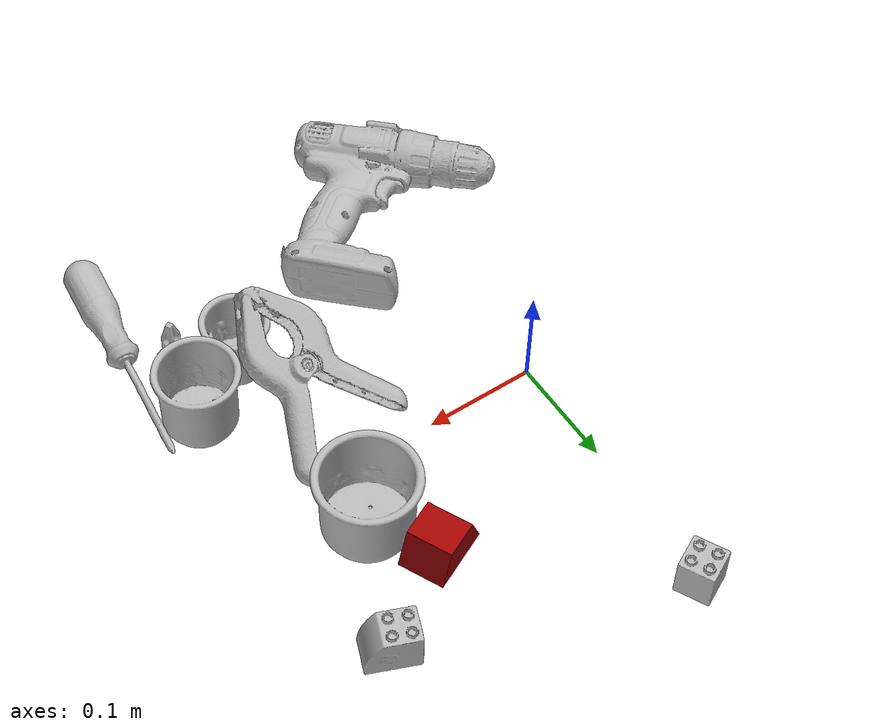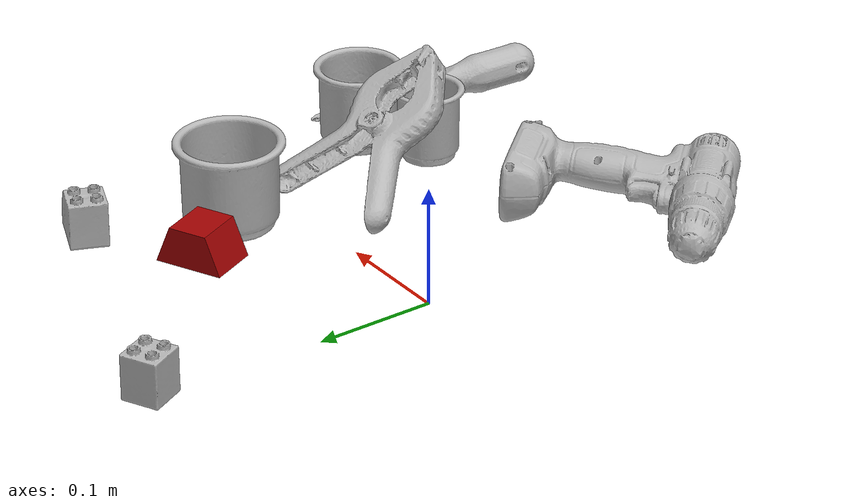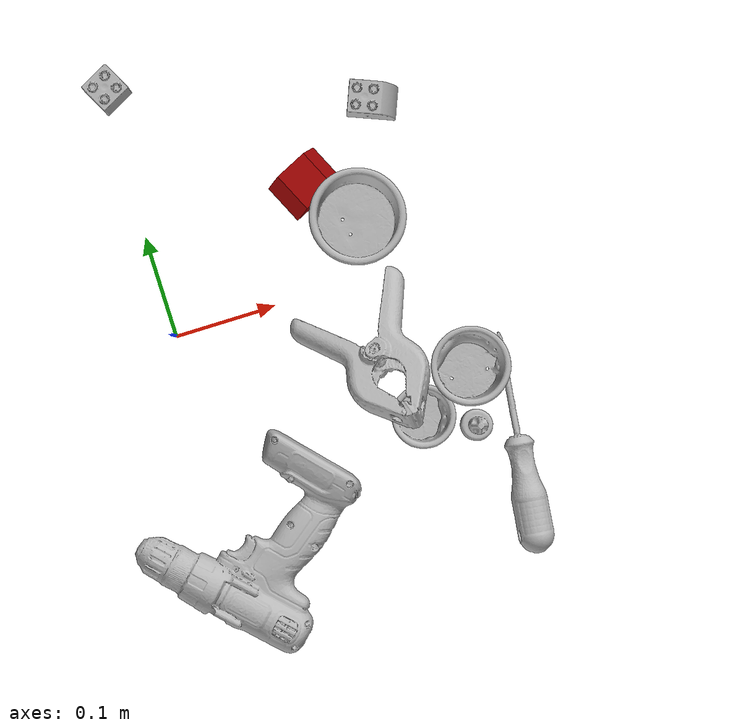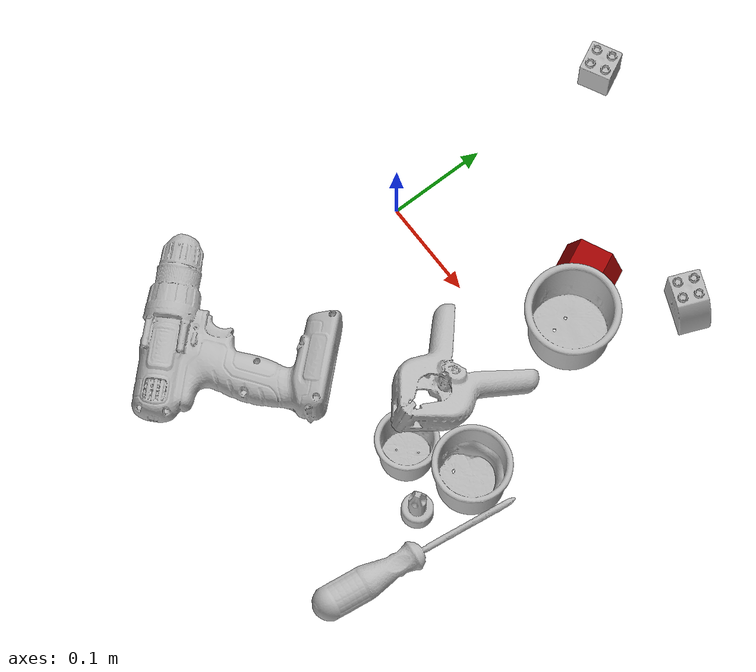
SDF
<sdf version="1.4">
  <world name="default">
    <light name="light1" type="point">
      <pose>0 0 1 0 0 0</pose>
      <diffuse>3 3 3 1</diffuse>
      <specular>3 3 3 1</specular>
    </light>
    <light name="light2" type="point">
      <pose>0 0.5 2 0 0 0</pose>
      <diffuse>1 1 1 1</diffuse>
      <specular>1 1 1 1</specular>
    </light>
    <light name="light3" type="point">
      <pose>0 0.5 2 0 0 0</pose>
      <diffuse>3 3 3 1</diffuse>
      <specular>3 3 3 1</specular>
    </light>
    <scene>
      <ambient>0.7 0.7 0.7</ambient>
    </scene>
    <model name="cup1">
      <link name="link_cup1">
        <collision name="default">
          <geometry>
            <mesh>
              <uri>model://b_cups/collision_meshes/collision.obj</uri>
              <scale>1.0 1.0 1.0</scale>
            </mesh>
          </geometry>
          <surface>
            <friction>
              <ode>
                <mu>0.5</mu>
                <mu2>0.5</mu2>
              </ode>
            </friction>
          <contact>
        <ode>
            <max_vel>0</max_vel>
            <min_depth>0.0001</min_depth>
            <kp>1e8</kp>
        </ode>
    </contact></surface>
        </collision>
        <visual name="default">
          <geometry>
            <mesh>
              <uri>model://b_cups/visual_meshes/visual.dae</uri>
              <scale>1.0 1.0 1.0</scale>
            </mesh>
          </geometry>
        </visual>
        <inertial>
          <mass>0.048613063991069794</mass>
          <pose>0.0005182003951631486 0.0018058597343042493 -0.0013381808530539274 0.11356326710502956 0.03872484102688303 -0.34569225342860055</pose>
          <inertia>
            <ixx>3.1820662e-05</ixx>
            <iyy>3.121653e-05</iyy>
            <izz>2.6776484e-05</izz>
            <ixy>0</ixy>
            <ixz>0</ixz>
            <iyz>0</iyz>
          </inertia>
        </inertial>
      </link>
      <pose>0.20308539271354675 -0.14379917085170746 0.03199750557541847 -0.007683753643053652 -0.0039175606916158475 -1.5309615795754663</pose>
    </model>
    <model name="cup2">
      <link name="link_cup2">
        <collision name="default">
          <geometry>
            <mesh>
              <uri>model://e_cups/collision_meshes/collision.obj</uri>
              <scale>1.0 1.0 1.0</scale>
            </mesh>
          </geometry>
          <surface>
            <friction>
              <ode>
                <mu>0.5</mu>
                <mu2>0.5</mu2>
              </ode>
            </friction>
          <contact>
        <ode>
            <max_vel>0</max_vel>
            <min_depth>0.0001</min_depth>
            <kp>1e8</kp>
        </ode>
    </contact></surface>
        </collision>
        <visual name="default">
          <geometry>
            <mesh>
              <uri>model://e_cups/visual_meshes/visual.dae</uri>
              <scale>1.0 1.0 1.0</scale>
            </mesh>
          </geometry>
        </visual>
        <inertial>
          <mass>0.07592208683490753</mass>
          <pose>0.0011355738388374448 0.002879784908145666 -0.003882972290739417 0.695241209711482 0.0876783799590152 -0.5235234031188288</pose>
          <inertia>
            <ixx>6.6944274e-05</ixx>
            <iyy>6.996636e-05</iyy>
            <izz>6.400647e-05</izz>
            <ixy>0</ixy>
            <ixz>0</ixz>
            <iyz>0</iyz>
          </inertia>
        </inertial>
      </link>
      <pose>0.25946396589279175 -0.11152496188879013 0.03559984639286995 9.03562214263899e-05 -0.00011429205233556277 0.3211052647029235</pose>
    </model>
    <model name="cup3">
      <link name="link_cup3">
        <collision name="default">
          <geometry>
            <mesh>
              <uri>model://h_cups/collision_meshes/collision.obj</uri>
              <scale>1.0 1.0 1.0</scale>
            </mesh>
          </geometry>
          <surface>
            <friction>
              <ode>
                <mu>0.5</mu>
                <mu2>0.5</mu2>
              </ode>
            </friction>
          <contact>
        <ode>
            <max_vel>0</max_vel>
            <min_depth>0.0001</min_depth>
            <kp>1e8</kp>
        </ode>
    </contact></surface>
        </collision>
        <visual name="default">
          <geometry>
            <mesh>
              <uri>model://h_cups/visual_meshes/visual.dae</uri>
              <scale>1.0 1.0 1.0</scale>
            </mesh>
          </geometry>
        </visual>
        <inertial>
          <mass>0.07054857164621353</mass>
          <pose>-2.7030857381760143e-05 0.0002301865170011297 -0.0018405391601845622 -0.024362378998248252 0.0654525662963329 0.12884761756284485</pose>
          <inertia>
            <ixx>9.1110225e-05</ixx>
            <iyy>9.002296e-05</iyy>
            <izz>9.5549614e-05</izz>
            <ixy>0</ixy>
            <ixz>0</ixz>
            <iyz>0</iyz>
          </inertia>
        </inertial>
      </link>
      <pose>0.19964298605918884 0.05381534993648529 0.037758003920316696 -6.19189144141022e-08 -3.4092054172108594e-08 0.10362032616931438</pose>
    </model>
    <model name="toy1">
      <link name="link_toy1">
        <collision name="default">
          <geometry>
            <mesh>
              <uri>model://f_lego_duplo/collision_meshes/collision.obj</uri>
              <scale>1.0 1.0 1.0</scale>
            </mesh>
          </geometry>
          <surface>
            <friction>
              <ode>
                <mu>0.5</mu>
                <mu2>0.5</mu2>
              </ode>
            </friction>
          <contact>
        <ode>
            <max_vel>0</max_vel>
            <min_depth>0.0001</min_depth>
            <kp>1e8</kp>
        </ode>
    </contact></surface>
        </collision>
        <visual name="default">
          <geometry>
            <mesh>
              <uri>model://f_lego_duplo/visual_meshes/visual.dae</uri>
              <scale>1.0 1.0 1.0</scale>
            </mesh>
          </geometry>
        </visual>
        <inertial>
          <mass>0.027637142688035965</mass>
          <pose>2.3694037736277096e-05 0.0001339315203949809 0.0018837873358279467 0.029838580482088747 -0.014425059949813135 -0.6756637855802661</pose>
          <inertia>
            <ixx>5.8398805e-06</ixx>
            <iyy>5.8919077e-06</iyy>
            <izz>5.069264e-06</izz>
            <ixy>0</ixy>
            <ixz>0</ixz>
            <iyz>0</iyz>
          </inertia>
        </inertial>
      </link>
      <pose>0.008006651885807514 0.24518786370754242 0.02187098190188408 5.472982024819329e-06 6.547981981978742e-06 0.47151484533340715</pose>
    </model>
    <model name="toy2">
      <link name="link_toy2">
        <collision name="default">
          <geometry>
            <mesh>
              <uri>model://d_toy_airplane/collision_meshes/collision.obj</uri>
              <scale>1.0 1.0 1.0</scale>
            </mesh>
          </geometry>
          <surface>
            <friction>
              <ode>
                <mu>0.5</mu>
                <mu2>0.5</mu2>
              </ode>
            </friction>
          <contact>
        <ode>
            <max_vel>0</max_vel>
            <min_depth>0.0001</min_depth>
            <kp>1e8</kp>
        </ode>
    </contact></surface>
        </collision>
        <visual name="default">
          <geometry>
            <mesh>
              <uri>model://d_toy_airplane/visual_meshes/visual.dae</uri>
              <scale>1.0 1.0 1.0</scale>
            </mesh>
          </geometry>
        </visual>
        <inertial>
          <mass>0.017859498038887978</mass>
          <pose>9.410335042048246e-05 -5.809318827232346e-05 -0.011728094890713692 0.0002667298520076861 0.004679004392369758 0.5194091511239993</pose>
          <inertia>
            <ixx>5.35393e-06</ixx>
            <iyy>5.3579683e-06</iyy>
            <izz>1.6163864e-06</izz>
            <ixy>0</ixy>
            <ixz>0</ixz>
            <iyz>0</iyz>
          </inertia>
        </inertial>
      </link>
      <pose>0.2515612244606018 -0.16843347251415253 0.03333863988518715 -0.00015650635383605867 -0.00026740962945555894 0.5413629578868435</pose>
    </model>
    <model name="toy3">
      <link name="link_toy3">
        <collision name="default">
          <geometry>
            <mesh>
              <uri>model://prism/collision_meshes/collision.obj</uri>
              <scale>0.5 0.5 0.5</scale>
            </mesh>
          </geometry>
          <surface>
            <friction>
              <ode>
                <mu>0.5</mu>
                <mu2>0.5</mu2>
              </ode>
            </friction>
          <contact>
        <ode>
            <max_vel>0</max_vel>
            <min_depth>0.0001</min_depth>
            <kp>1e8</kp>
        </ode>
    </contact></surface>
        </collision>
        <visual name="default">
          <geometry>
            <mesh>
              <uri>model://prism/visual_meshes/visual.dae</uri>
              <scale>0.5 0.5 0.5</scale>
            </mesh>
          </geometry>
        </visual>
        <inertial>
          <mass>0.04761093109846115</mass>
          <pose>-4.92679828312248e-05 -2.480786349678965e-07 -0.001693455153144896 0.0 0.006559181231804993 0.0</pose>
          <inertia>
            <ixx>1.074207e-05</ixx>
            <iyy>1.2981929e-05</iyy>
            <izz>1.590131e-05</izz>
            <ixy>0</ixy>
            <ixz>0</ixz>
            <iyz>0</iyz>
          </inertia>
        </inertial>
      </link>
      <pose>0.16355150938034058 0.10373120754957199 0.016084998846054077 1.0609349166778971e-07 -7.287694658508617e-08 -2.701516084348492</pose>
    </model>
    <model name="toy4">
      <link name="link_toy4">
        <collision name="default">
          <geometry>
            <mesh>
              <uri>model://d_lego_duplo/collision_meshes/collision.obj</uri>
              <scale>1.0 1.0 1.0</scale>
            </mesh>
          </geometry>
          <surface>
            <friction>
              <ode>
                <mu>0.5</mu>
                <mu2>0.5</mu2>
              </ode>
            </friction>
          <contact>
        <ode>
            <max_vel>0</max_vel>
            <min_depth>0.0001</min_depth>
            <kp>1e8</kp>
        </ode>
    </contact></surface>
        </collision>
        <visual name="default">
          <geometry>
            <mesh>
              <uri>model://d_lego_duplo/visual_meshes/visual.dae</uri>
              <scale>1.0 1.0 1.0</scale>
            </mesh>
          </geometry>
        </visual>
        <inertial>
          <mass>0.06000049039721489</mass>
          <pose>0.0028305640444159508 0.0001636611996218562 0.000858980929479003 0.08010949527318252 -0.38355210287845315 0.0010297055105996263</pose>
          <inertia>
            <ixx>1.1615211e-05</ixx>
            <iyy>1.6485134e-05</iyy>
            <izz>1.5897598e-05</izz>
            <ixy>0</ixy>
            <ixz>0</ixz>
            <iyz>0</iyz>
          </inertia>
        </inertial>
      </link>
      <pose>0.2489728182554245 0.16010573506355286 0.021740011870861053 -9.223347238381068e-07 3.3708830976574353e-07 2.7582035434238112</pose>
    </model>
    <model name="hardware1">
      <link name="link_hardware1">
        <collision name="default">
          <geometry>
            <mesh>
              <uri>model://phillips_screwdriver/collision_meshes/collision.obj</uri>
              <scale>1.0 1.0 1.0</scale>
            </mesh>
          </geometry>
          <surface>
            <friction>
              <ode>
                <mu>0.5</mu>
                <mu2>0.5</mu2>
              </ode>
            </friction>
          <contact>
        <ode>
            <max_vel>0</max_vel>
            <min_depth>0.0001</min_depth>
            <kp>1e8</kp>
        </ode>
    </contact></surface>
        </collision>
        <visual name="default">
          <geometry>
            <mesh>
              <uri>model://phillips_screwdriver/visual_meshes/visual.dae</uri>
              <scale>1.0 1.0 1.0</scale>
            </mesh>
          </geometry>
        </visual>
        <inertial>
          <mass>0.11704345047473907</mass>
          <pose>-0.04777182638645172 0.0010362302418798208 -0.0004555549821816385 -0.1571668982332543 0.0058509943133797405 -0.002156735283865719</pose>
          <inertia>
            <ixx>1.3751404e-05</ixx>
            <iyy>0.00017241857</iyy>
            <izz>0.0001725651</izz>
            <ixy>0</ixy>
            <ixz>0</ixz>
            <iyz>0</iyz>
          </inertia>
        </inertial>
      </link>
      <pose>0.28576987981796265 -0.1990475058555603 0.015409649349749088 0.06561083713957082 0.03756826918945392 1.4513942925801209</pose>
    </model>
    <model name="hardware2">
      <link name="link_hardware2">
        <collision name="default">
          <geometry>
            <mesh>
              <uri>model://large_clamp/collision_meshes/collision.obj</uri>
              <scale>1.0 1.0 1.0</scale>
            </mesh>
          </geometry>
          <surface>
            <friction>
              <ode>
                <mu>0.5</mu>
                <mu2>0.5</mu2>
              </ode>
            </friction>
          <contact>
        <ode>
            <max_vel>0</max_vel>
            <min_depth>0.0001</min_depth>
            <kp>1e8</kp>
        </ode>
    </contact></surface>
        </collision>
        <visual name="default">
          <geometry>
            <mesh>
              <uri>model://large_clamp/visual_meshes/visual.dae</uri>
              <scale>1.0 1.0 1.0</scale>
            </mesh>
          </geometry>
        </visual>
        <inertial>
          <mass>0.18953841924667358</mass>
          <pose>0.00636935792863369 0.0003585682134144008 -0.00018398056272417307 -0.002133075536327147 0.009671586607470332 0.026633167384546762</pose>
          <inertia>
            <ixx>0.00016722476</ixx>
            <iyy>0.0003175689</iyy>
            <izz>0.00045940367</izz>
            <ixy>0</ixy>
            <ixz>0</ixz>
            <iyz>0</iyz>
          </inertia>
        </inertial>
      </link>
      <pose>0.17881466448307037 -0.07752526551485062 0.0523681715130806 0.02329540575153151 -0.5880232038364797 -1.383616061182317</pose>
    </model>
    <model name="hardware3">
      <link name="link_hardware3">
        <collision name="default">
          <geometry>
            <mesh>
              <uri>model://power_drill/collision_meshes/collision.obj</uri>
              <scale>1.0 1.0 1.0</scale>
            </mesh>
          </geometry>
          <surface>
            <friction>
              <ode>
                <mu>0.5</mu>
                <mu2>0.5</mu2>
              </ode>
            </friction>
          <contact>
        <ode>
            <max_vel>0</max_vel>
            <min_depth>0.0001</min_depth>
            <kp>1e8</kp>
        </ode>
    </contact></surface>
        </collision>
        <visual name="default">
          <geometry>
            <mesh>
              <uri>model://power_drill/visual_meshes/visual.dae</uri>
              <scale>1.0 1.0 1.0</scale>
            </mesh>
          </geometry>
        </visual>
        <inertial>
          <mass>0.5207164287567139</mass>
          <pose>-0.014780543744564056 0.014369428157806396 0.0012414171360433102 0.004609162650930739 0.004073022346756156 -0.183626968168983</pose>
          <inertia>
            <ixx>0.0021219437</ixx>
            <iyy>0.00083487434</iyy>
            <izz>0.002802402</izz>
            <ixy>0</ixy>
            <ixz>0</ixz>
            <iyz>0</iyz>
          </inertia>
        </inertial>
      </link>
      <pose>0.01931379921734333 -0.20214179158210754 0.027312450110912323 -0.030306027371941237 -0.04725285284346568 2.3335656296846827</pose>
    </model>
  <physics type="ode">
      <max_contacts>50</max_contacts>
      <ode>
        <solver>
          <type>quick</type>
          <iters>75</iters>
        </solver>
        <constraints>
          <contact_max_correcting_vel>0</contact_max_correcting_vel>
          <contact_surface_layer>0</contact_surface_layer>
        </constraints>
      </ode>
    </physics></world>
</sdf>
